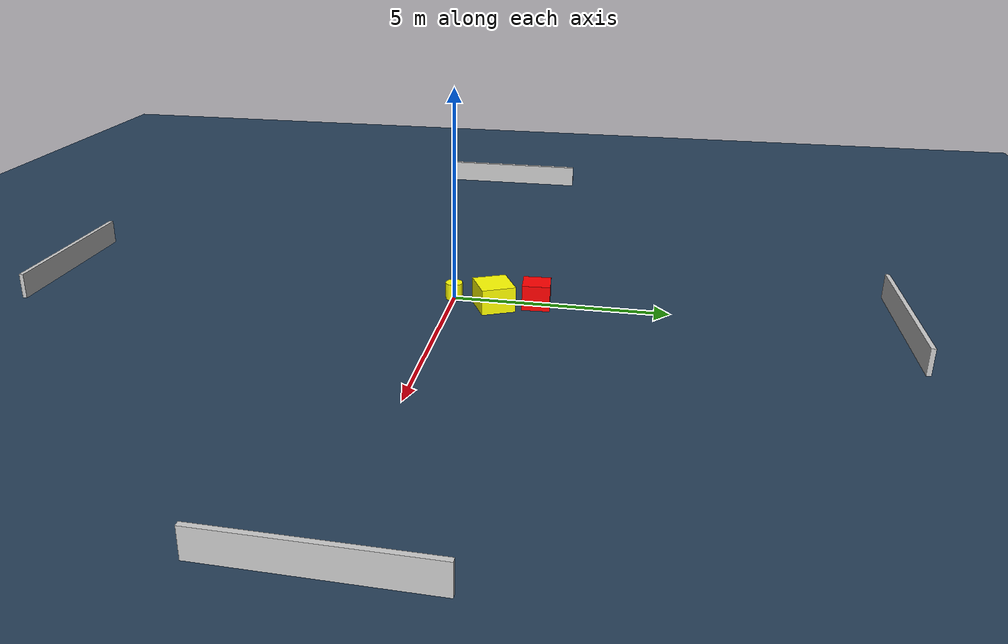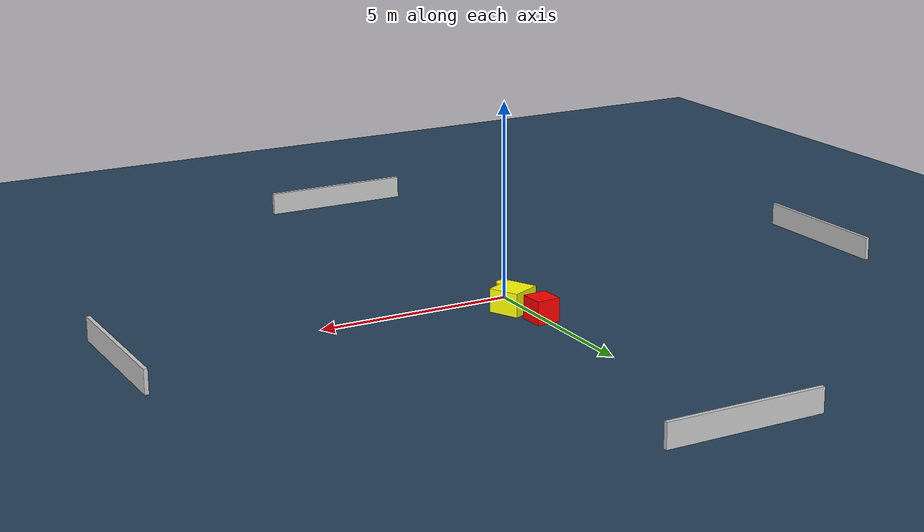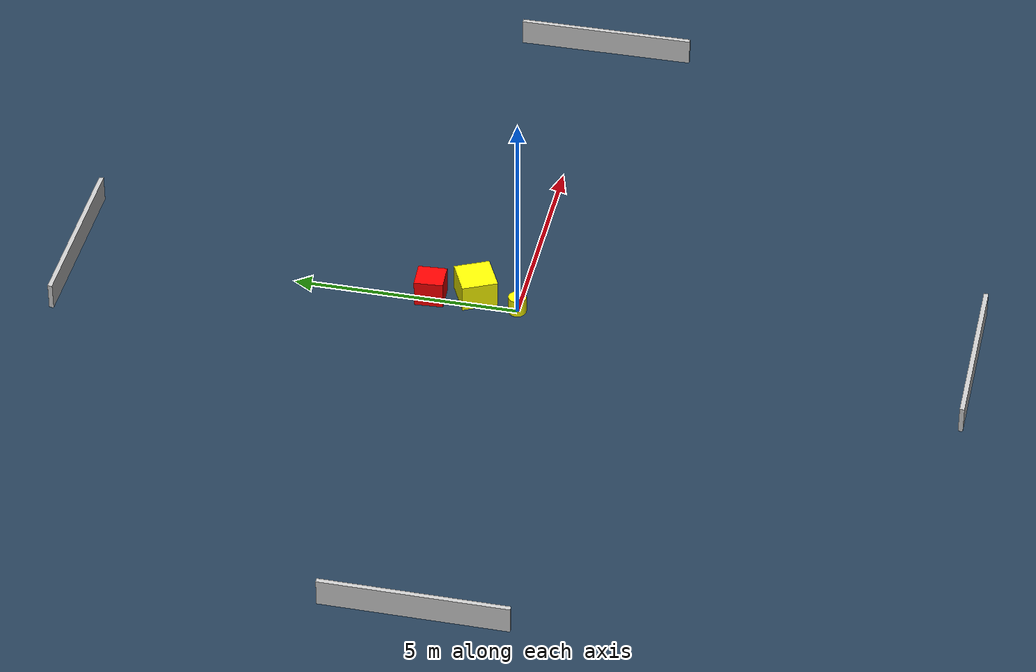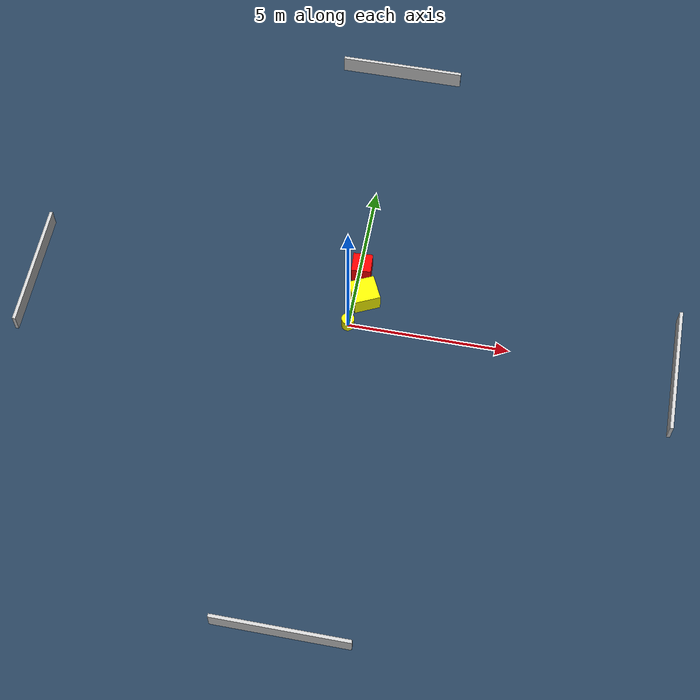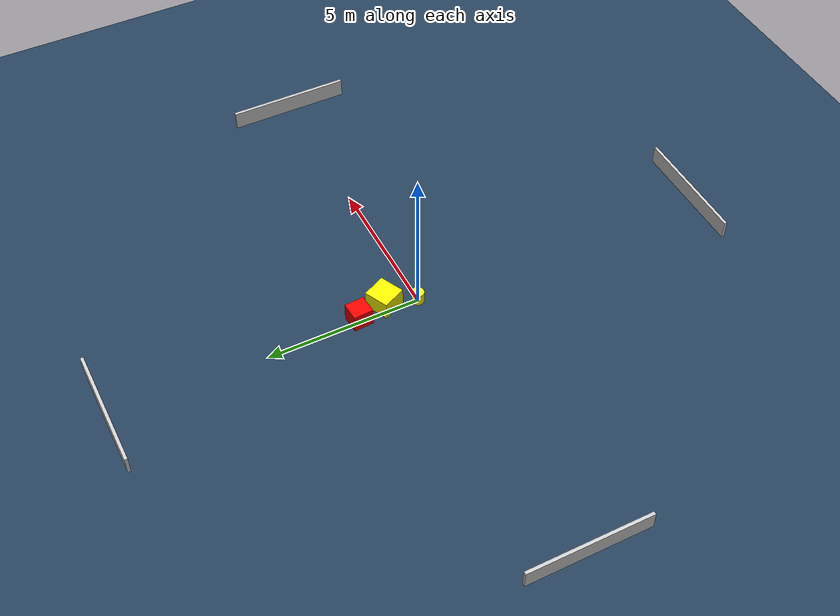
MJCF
<?xml version="1.0" ?>
<mujoco model="generated_environment">
  <option timestep="0.01" integrator="RK4" cone="elliptic"/>
  <default>
    <geom density="1"/>
  </default>
  <asset>
    <texture builtin="gradient" height="3072" name="skybox" rgb1="0.3 0.5 0.7" rgb2="0 0 0" type="skybox" width="512"/>
    <texture builtin="checker" height="300" name="groundplane" rgb1="0.2 0.3 0.4" rgb2="0.1 0.2 0.3" type="2d" width="300"/>
    <material name="groundplane" reflectance="0.2" texrepeat="5 5" texture="groundplane"/>
  </asset>
  <worldbody>
    <light dir="0 0 -1" directional="true" pos="0 0 1.5"/>
    <geom condim="3" friction="0.5 0.005 0.001" material="groundplane" name="floor" pos="0 0 0" size="0 0 0.05" type="plane"/>
    <body name="walls">
      <geom name="wall_1" condim="4" pos="-10.0 0.0 0.3" rgba="0.800000011920929 0.800000011920929 0.800000011920929 1.0" size="0.05 2.0 0.3" type="box"/>
      <geom name="wall_2" condim="4" pos="10.0 0.0 0.3" rgba="0.800000011920929 0.800000011920929 0.800000011920929 1.0" size="0.05 2.0 0.3" type="box"/>
      <geom name="wall_3" condim="4" pos="0.0 -10.0 0.3" rgba="0.800000011920929 0.800000011920929 0.800000011920929 1.0" size="2.0 0.05 0.3" type="box"/>
      <geom name="wall_4" condim="4" pos="0.0 10.0 0.3" rgba="0.800000011920929 0.800000011920929 0.800000011920929 1.0" size="2.0 0.05 0.3" type="box"/>
    </body>
    <body name="robot">
      <joint name="joint_x" type="slide" pos="0 0 0" axis="1 0 0"/>
      <joint name="joint_y" type="slide" pos="0 0 0" axis="0 1 0"/>
      <geom name="robot" type="cylinder" pos="0.0 0.0 0.2" size="0.2 0.2 0.0" mass="5.0" friction="1.0 0.005 0.0001" condim="4" rgba="1.0 1.0 0.0 1.0"/>
    </body>
    <body name="obstacle_1_movable">
      <geom name="obstacle_1_movable" condim="4" pos="0.3200749408385449 0.998981913823902 0.3" euler="0 0 295.46569422589147" friction="0.0 0.005 0.001" rgba="1.0 1.0 0.0 1.0" size="0.4001352432846538 0.41109577548642334 0.3" type="box" mass="0.1"/>
      <joint type="free"/>
    </body>
    <body name="obstacle_2_static">
      <geom name="obstacle_2_static" condim="4" pos="0.08083539316173383 1.9604474001029104 0.3" euler="0 0 3.4944871880779083" friction="0.0 0.005 0.001" rgba="1.0 0.0 0.0 1.0" size="0.30619987404622157 0.32033798626087745 0.3" type="box"/>
    </body>
  </worldbody>
  <actuator>
    <motor name="actuator_x" joint="joint_x" gear="1" ctrlrange="-1 1"/>
    <motor name="actuator_y" joint="joint_y" gear="1" ctrlrange="-1 1"/>
  </actuator>
</mujoco>
